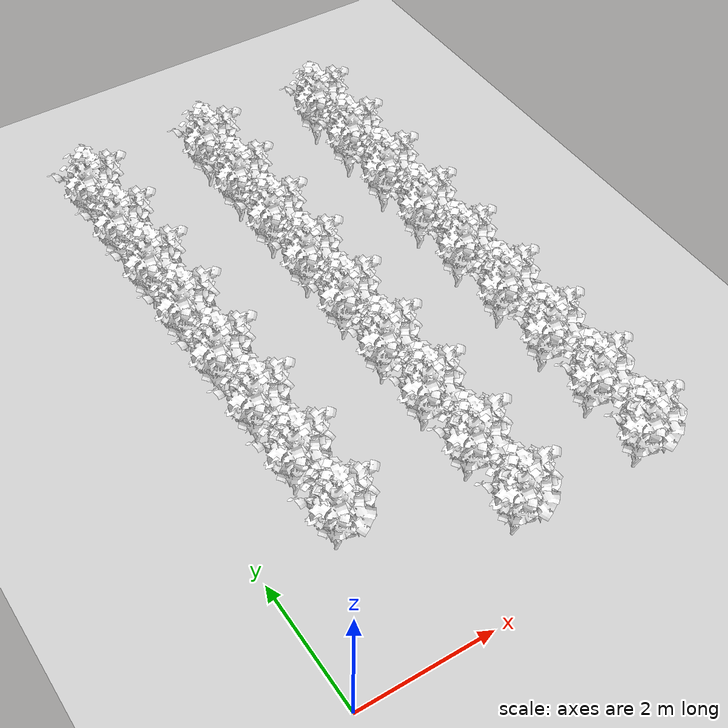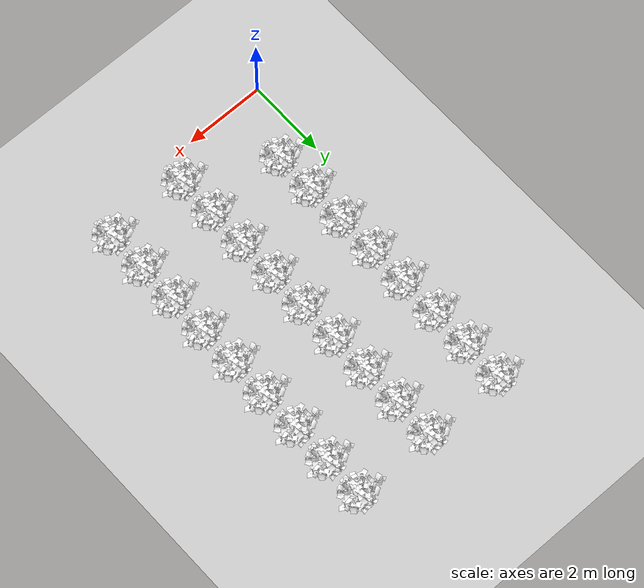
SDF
<sdf version="1.7">
 <world name="default">
  <include><uri>model://sun</uri></include>
  <model name="tree_43">
   <static>true</static>
   <link name="link">
    <visual name="trunk">
     <geometry><mesh><uri>model://meshes/Tree_1_Trunk.dae</uri></mesh></geometry>
     <material>
      <script>
       <uri>model://materials/scripts/</uri>
       <uri>model://materials/textures/</uri>
       <name>Vine/Bark</name>
      </script>
     </material>
    </visual>
    <visual name="leafa">
     <geometry><mesh><uri>model://meshes/Tree_1_Leaf_1.dae</uri></mesh></geometry>
     <material>
      <script>
       <uri>model://materials/scripts/</uri>
       <uri>model://materials/textures/</uri>
       <name>Vine/Leafa</name>
      </script>
     </material>
    </visual>
    <visual name="leafb">
     <geometry><mesh><uri>model://meshes/Tree_1_Leaf_2.dae</uri></mesh></geometry>
     <material>
      <script>
       <uri>model://materials/scripts/</uri>
       <uri>model://materials/textures/</uri>
       <name>Vine/Leafb</name>
      </script>
     </material>
    </visual>
    <visual name="leafc">
     <geometry><mesh><uri>model://meshes/Tree_1_Leaf_3.dae</uri></mesh></geometry>
     <material>
      <script>
       <uri>model://materials/scripts/</uri>
       <uri>model://materials/textures/</uri>
       <name>Vine/Leafc</name>
      </script>
     </material>
    </visual>
   </link>
   <pose>1 2 -0.3 0 0 0</pose>
  </model>
  <model name="tree_44">
   <static>true</static>
   <link name="link">
    <visual name="trunk">
     <geometry><mesh><uri>model://meshes/Tree_1_Trunk.dae</uri></mesh></geometry>
     <material>
      <script>
       <uri>model://materials/scripts/</uri>
       <uri>model://materials/textures/</uri>
       <name>Vine/Bark</name>
      </script>
     </material>
    </visual>
    <visual name="leafa">
     <geometry><mesh><uri>model://meshes/Tree_1_Leaf_1.dae</uri></mesh></geometry>
     <material>
      <script>
       <uri>model://materials/scripts/</uri>
       <uri>model://materials/textures/</uri>
       <name>Vine/Leafa</name>
      </script>
     </material>
    </visual>
    <visual name="leafb">
     <geometry><mesh><uri>model://meshes/Tree_1_Leaf_2.dae</uri></mesh></geometry>
     <material>
      <script>
       <uri>model://materials/scripts/</uri>
       <uri>model://materials/textures/</uri>
       <name>Vine/Leafb</name>
      </script>
     </material>
    </visual>
    <visual name="leafc">
     <geometry><mesh><uri>model://meshes/Tree_1_Leaf_3.dae</uri></mesh></geometry>
     <material>
      <script>
       <uri>model://materials/scripts/</uri>
       <uri>model://materials/textures/</uri>
       <name>Vine/Leafc</name>
      </script>
     </material>
    </visual>
   </link>
   <pose>1 3 -0.3 0 0 0</pose>
  </model>
  <model name="tree_45">
   <static>true</static>
   <link name="link">
    <visual name="trunk">
     <geometry><mesh><uri>model://meshes/Tree_1_Trunk.dae</uri></mesh></geometry>
     <material>
      <script>
       <uri>model://materials/scripts/</uri>
       <uri>model://materials/textures/</uri>
       <name>Vine/Bark</name>
      </script>
     </material>
    </visual>
    <visual name="leafa">
     <geometry><mesh><uri>model://meshes/Tree_1_Leaf_1.dae</uri></mesh></geometry>
     <material>
      <script>
       <uri>model://materials/scripts/</uri>
       <uri>model://materials/textures/</uri>
       <name>Vine/Leafa</name>
      </script>
     </material>
    </visual>
    <visual name="leafb">
     <geometry><mesh><uri>model://meshes/Tree_1_Leaf_2.dae</uri></mesh></geometry>
     <material>
      <script>
       <uri>model://materials/scripts/</uri>
       <uri>model://materials/textures/</uri>
       <name>Vine/Leafb</name>
      </script>
     </material>
    </visual>
    <visual name="leafc">
     <geometry><mesh><uri>model://meshes/Tree_1_Leaf_3.dae</uri></mesh></geometry>
     <material>
      <script>
       <uri>model://materials/scripts/</uri>
       <uri>model://materials/textures/</uri>
       <name>Vine/Leafc</name>
      </script>
     </material>
    </visual>
   </link>
   <pose>1 4 -0.3 0 0 0</pose>
  </model>
  <model name="tree_46">
   <static>true</static>
   <link name="link">
    <visual name="trunk">
     <geometry><mesh><uri>model://meshes/Tree_1_Trunk.dae</uri></mesh></geometry>
     <material>
      <script>
       <uri>model://materials/scripts/</uri>
       <uri>model://materials/textures/</uri>
       <name>Vine/Bark</name>
      </script>
     </material>
    </visual>
    <visual name="leafa">
     <geometry><mesh><uri>model://meshes/Tree_1_Leaf_1.dae</uri></mesh></geometry>
     <material>
      <script>
       <uri>model://materials/scripts/</uri>
       <uri>model://materials/textures/</uri>
       <name>Vine/Leafa</name>
      </script>
     </material>
    </visual>
    <visual name="leafb">
     <geometry><mesh><uri>model://meshes/Tree_1_Leaf_2.dae</uri></mesh></geometry>
     <material>
      <script>
       <uri>model://materials/scripts/</uri>
       <uri>model://materials/textures/</uri>
       <name>Vine/Leafb</name>
      </script>
     </material>
    </visual>
    <visual name="leafc">
     <geometry><mesh><uri>model://meshes/Tree_1_Leaf_3.dae</uri></mesh></geometry>
     <material>
      <script>
       <uri>model://materials/scripts/</uri>
       <uri>model://materials/textures/</uri>
       <name>Vine/Leafc</name>
      </script>
     </material>
    </visual>
   </link>
   <pose>1 5 -0.3 0 0 0</pose>
  </model>
  <model name="tree_47">
   <static>true</static>
   <link name="link">
    <visual name="trunk">
     <geometry><mesh><uri>model://meshes/Tree_1_Trunk.dae</uri></mesh></geometry>
     <material>
      <script>
       <uri>model://materials/scripts/</uri>
       <uri>model://materials/textures/</uri>
       <name>Vine/Bark</name>
      </script>
     </material>
    </visual>
    <visual name="leafa">
     <geometry><mesh><uri>model://meshes/Tree_1_Leaf_1.dae</uri></mesh></geometry>
     <material>
      <script>
       <uri>model://materials/scripts/</uri>
       <uri>model://materials/textures/</uri>
       <name>Vine/Leafa</name>
      </script>
     </material>
    </visual>
    <visual name="leafb">
     <geometry><mesh><uri>model://meshes/Tree_1_Leaf_2.dae</uri></mesh></geometry>
     <material>
      <script>
       <uri>model://materials/scripts/</uri>
       <uri>model://materials/textures/</uri>
       <name>Vine/Leafb</name>
      </script>
     </material>
    </visual>
    <visual name="leafc">
     <geometry><mesh><uri>model://meshes/Tree_1_Leaf_3.dae</uri></mesh></geometry>
     <material>
      <script>
       <uri>model://materials/scripts/</uri>
       <uri>model://materials/textures/</uri>
       <name>Vine/Leafc</name>
      </script>
     </material>
    </visual>
   </link>
   <pose>1 6 -0.3 0 0 0</pose>
  </model>
  <model name="tree_48">
   <static>true</static>
   <link name="link">
    <visual name="trunk">
     <geometry><mesh><uri>model://meshes/Tree_1_Trunk.dae</uri></mesh></geometry>
     <material>
      <script>
       <uri>model://materials/scripts/</uri>
       <uri>model://materials/textures/</uri>
       <name>Vine/Bark</name>
      </script>
     </material>
    </visual>
    <visual name="leafa">
     <geometry><mesh><uri>model://meshes/Tree_1_Leaf_1.dae</uri></mesh></geometry>
     <material>
      <script>
       <uri>model://materials/scripts/</uri>
       <uri>model://materials/textures/</uri>
       <name>Vine/Leafa</name>
      </script>
     </material>
    </visual>
    <visual name="leafb">
     <geometry><mesh><uri>model://meshes/Tree_1_Leaf_2.dae</uri></mesh></geometry>
     <material>
      <script>
       <uri>model://materials/scripts/</uri>
       <uri>model://materials/textures/</uri>
       <name>Vine/Leafb</name>
      </script>
     </material>
    </visual>
    <visual name="leafc">
     <geometry><mesh><uri>model://meshes/Tree_1_Leaf_3.dae</uri></mesh></geometry>
     <material>
      <script>
       <uri>model://materials/scripts/</uri>
       <uri>model://materials/textures/</uri>
       <name>Vine/Leafc</name>
      </script>
     </material>
    </visual>
   </link>
   <pose>1 7 -0.3 0 0 0</pose>
  </model>
  <model name="tree_49">
   <static>true</static>
   <link name="link">
    <visual name="trunk">
     <geometry><mesh><uri>model://meshes/Tree_1_Trunk.dae</uri></mesh></geometry>
     <material>
      <script>
       <uri>model://materials/scripts/</uri>
       <uri>model://materials/textures/</uri>
       <name>Vine/Bark</name>
      </script>
     </material>
    </visual>
    <visual name="leafa">
     <geometry><mesh><uri>model://meshes/Tree_1_Leaf_1.dae</uri></mesh></geometry>
     <material>
      <script>
       <uri>model://materials/scripts/</uri>
       <uri>model://materials/textures/</uri>
       <name>Vine/Leafa</name>
      </script>
     </material>
    </visual>
    <visual name="leafb">
     <geometry><mesh><uri>model://meshes/Tree_1_Leaf_2.dae</uri></mesh></geometry>
     <material>
      <script>
       <uri>model://materials/scripts/</uri>
       <uri>model://materials/textures/</uri>
       <name>Vine/Leafb</name>
      </script>
     </material>
    </visual>
    <visual name="leafc">
     <geometry><mesh><uri>model://meshes/Tree_1_Leaf_3.dae</uri></mesh></geometry>
     <material>
      <script>
       <uri>model://materials/scripts/</uri>
       <uri>model://materials/textures/</uri>
       <name>Vine/Leafc</name>
      </script>
     </material>
    </visual>
   </link>
   <pose>1 8 -0.3 0 0 0</pose>
  </model>
  <model name="tree_50">
   <static>true</static>
   <link name="link">
    <visual name="trunk">
     <geometry><mesh><uri>model://meshes/Tree_1_Trunk.dae</uri></mesh></geometry>
     <material>
      <script>
       <uri>model://materials/scripts/</uri>
       <uri>model://materials/textures/</uri>
       <name>Vine/Bark</name>
      </script>
     </material>
    </visual>
    <visual name="leafa">
     <geometry><mesh><uri>model://meshes/Tree_1_Leaf_1.dae</uri></mesh></geometry>
     <material>
      <script>
       <uri>model://materials/scripts/</uri>
       <uri>model://materials/textures/</uri>
       <name>Vine/Leafa</name>
      </script>
     </material>
    </visual>
    <visual name="leafb">
     <geometry><mesh><uri>model://meshes/Tree_1_Leaf_2.dae</uri></mesh></geometry>
     <material>
      <script>
       <uri>model://materials/scripts/</uri>
       <uri>model://materials/textures/</uri>
       <name>Vine/Leafb</name>
      </script>
     </material>
    </visual>
    <visual name="leafc">
     <geometry><mesh><uri>model://meshes/Tree_1_Leaf_3.dae</uri></mesh></geometry>
     <material>
      <script>
       <uri>model://materials/scripts/</uri>
       <uri>model://materials/textures/</uri>
       <name>Vine/Leafc</name>
      </script>
     </material>
    </visual>
   </link>
   <pose>1 9 -0.3 0 0 0</pose>
  </model>
  <model name="tree_55">
   <static>true</static>
   <link name="link">
    <visual name="trunk">
     <geometry><mesh><uri>model://meshes/Tree_1_Trunk.dae</uri></mesh></geometry>
     <material>
      <script>
       <uri>model://materials/scripts/</uri>
       <uri>model://materials/textures/</uri>
       <name>Vine/Bark</name>
      </script>
     </material>
    </visual>
    <visual name="leafa">
     <geometry><mesh><uri>model://meshes/Tree_1_Leaf_1.dae</uri></mesh></geometry>
     <material>
      <script>
       <uri>model://materials/scripts/</uri>
       <uri>model://materials/textures/</uri>
       <name>Vine/Leafa</name>
      </script>
     </material>
    </visual>
    <visual name="leafb">
     <geometry><mesh><uri>model://meshes/Tree_1_Leaf_2.dae</uri></mesh></geometry>
     <material>
      <script>
       <uri>model://materials/scripts/</uri>
       <uri>model://materials/textures/</uri>
       <name>Vine/Leafb</name>
      </script>
     </material>
    </visual>
    <visual name="leafc">
     <geometry><mesh><uri>model://meshes/Tree_1_Leaf_3.dae</uri></mesh></geometry>
     <material>
      <script>
       <uri>model://materials/scripts/</uri>
       <uri>model://materials/textures/</uri>
       <name>Vine/Leafc</name>
      </script>
     </material>
    </visual>
   </link>
   <pose>3 1 -0.3 0 0 0</pose>
  </model>
  <model name="tree_56">
   <static>true</static>
   <link name="link">
    <visual name="trunk">
     <geometry><mesh><uri>model://meshes/Tree_1_Trunk.dae</uri></mesh></geometry>
     <material>
      <script>
       <uri>model://materials/scripts/</uri>
       <uri>model://materials/textures/</uri>
       <name>Vine/Bark</name>
      </script>
     </material>
    </visual>
    <visual name="leafa">
     <geometry><mesh><uri>model://meshes/Tree_1_Leaf_1.dae</uri></mesh></geometry>
     <material>
      <script>
       <uri>model://materials/scripts/</uri>
       <uri>model://materials/textures/</uri>
       <name>Vine/Leafa</name>
      </script>
     </material>
    </visual>
    <visual name="leafb">
     <geometry><mesh><uri>model://meshes/Tree_1_Leaf_2.dae</uri></mesh></geometry>
     <material>
      <script>
       <uri>model://materials/scripts/</uri>
       <uri>model://materials/textures/</uri>
       <name>Vine/Leafb</name>
      </script>
     </material>
    </visual>
    <visual name="leafc">
     <geometry><mesh><uri>model://meshes/Tree_1_Leaf_3.dae</uri></mesh></geometry>
     <material>
      <script>
       <uri>model://materials/scripts/</uri>
       <uri>model://materials/textures/</uri>
       <name>Vine/Leafc</name>
      </script>
     </material>
    </visual>
   </link>
   <pose>3 2 -0.3 0 0 0</pose>
  </model>
  <model name="tree_57">
   <static>true</static>
   <link name="link">
    <visual name="trunk">
     <geometry><mesh><uri>model://meshes/Tree_1_Trunk.dae</uri></mesh></geometry>
     <material>
      <script>
       <uri>model://materials/scripts/</uri>
       <uri>model://materials/textures/</uri>
       <name>Vine/Bark</name>
      </script>
     </material>
    </visual>
    <visual name="leafa">
     <geometry><mesh><uri>model://meshes/Tree_1_Leaf_1.dae</uri></mesh></geometry>
     <material>
      <script>
       <uri>model://materials/scripts/</uri>
       <uri>model://materials/textures/</uri>
       <name>Vine/Leafa</name>
      </script>
     </material>
    </visual>
    <visual name="leafb">
     <geometry><mesh><uri>model://meshes/Tree_1_Leaf_2.dae</uri></mesh></geometry>
     <material>
      <script>
       <uri>model://materials/scripts/</uri>
       <uri>model://materials/textures/</uri>
       <name>Vine/Leafb</name>
      </script>
     </material>
    </visual>
    <visual name="leafc">
     <geometry><mesh><uri>model://meshes/Tree_1_Leaf_3.dae</uri></mesh></geometry>
     <material>
      <script>
       <uri>model://materials/scripts/</uri>
       <uri>model://materials/textures/</uri>
       <name>Vine/Leafc</name>
      </script>
     </material>
    </visual>
   </link>
   <pose>3 3 -0.3 0 0 0</pose>
  </model>
  <model name="tree_58">
   <static>true</static>
   <link name="link">
    <visual name="trunk">
     <geometry><mesh><uri>model://meshes/Tree_1_Trunk.dae</uri></mesh></geometry>
     <material>
      <script>
       <uri>model://materials/scripts/</uri>
       <uri>model://materials/textures/</uri>
       <name>Vine/Bark</name>
      </script>
     </material>
    </visual>
    <visual name="leafa">
     <geometry><mesh><uri>model://meshes/Tree_1_Leaf_1.dae</uri></mesh></geometry>
     <material>
      <script>
       <uri>model://materials/scripts/</uri>
       <uri>model://materials/textures/</uri>
       <name>Vine/Leafa</name>
      </script>
     </material>
    </visual>
    <visual name="leafb">
     <geometry><mesh><uri>model://meshes/Tree_1_Leaf_2.dae</uri></mesh></geometry>
     <material>
      <script>
       <uri>model://materials/scripts/</uri>
       <uri>model://materials/textures/</uri>
       <name>Vine/Leafb</name>
      </script>
     </material>
    </visual>
    <visual name="leafc">
     <geometry><mesh><uri>model://meshes/Tree_1_Leaf_3.dae</uri></mesh></geometry>
     <material>
      <script>
       <uri>model://materials/scripts/</uri>
       <uri>model://materials/textures/</uri>
       <name>Vine/Leafc</name>
      </script>
     </material>
    </visual>
   </link>
   <pose>3 4 -0.3 0 0 0</pose>
  </model>
  <model name="tree_59">
   <static>true</static>
   <link name="link">
    <visual name="trunk">
     <geometry><mesh><uri>model://meshes/Tree_1_Trunk.dae</uri></mesh></geometry>
     <material>
      <script>
       <uri>model://materials/scripts/</uri>
       <uri>model://materials/textures/</uri>
       <name>Vine/Bark</name>
      </script>
     </material>
    </visual>
    <visual name="leafa">
     <geometry><mesh><uri>model://meshes/Tree_1_Leaf_1.dae</uri></mesh></geometry>
     <material>
      <script>
       <uri>model://materials/scripts/</uri>
       <uri>model://materials/textures/</uri>
       <name>Vine/Leafa</name>
      </script>
     </material>
    </visual>
    <visual name="leafb">
     <geometry><mesh><uri>model://meshes/Tree_1_Leaf_2.dae</uri></mesh></geometry>
     <material>
      <script>
       <uri>model://materials/scripts/</uri>
       <uri>model://materials/textures/</uri>
       <name>Vine/Leafb</name>
      </script>
     </material>
    </visual>
    <visual name="leafc">
     <geometry><mesh><uri>model://meshes/Tree_1_Leaf_3.dae</uri></mesh></geometry>
     <material>
      <script>
       <uri>model://materials/scripts/</uri>
       <uri>model://materials/textures/</uri>
       <name>Vine/Leafc</name>
      </script>
     </material>
    </visual>
   </link>
   <pose>3 5 -0.3 0 0 0</pose>
  </model>
  <model name="tree_60">
   <static>true</static>
   <link name="link">
    <visual name="trunk">
     <geometry><mesh><uri>model://meshes/Tree_1_Trunk.dae</uri></mesh></geometry>
     <material>
      <script>
       <uri>model://materials/scripts/</uri>
       <uri>model://materials/textures/</uri>
       <name>Vine/Bark</name>
      </script>
     </material>
    </visual>
    <visual name="leafa">
     <geometry><mesh><uri>model://meshes/Tree_1_Leaf_1.dae</uri></mesh></geometry>
     <material>
      <script>
       <uri>model://materials/scripts/</uri>
       <uri>model://materials/textures/</uri>
       <name>Vine/Leafa</name>
      </script>
     </material>
    </visual>
    <visual name="leafb">
     <geometry><mesh><uri>model://meshes/Tree_1_Leaf_2.dae</uri></mesh></geometry>
     <material>
      <script>
       <uri>model://materials/scripts/</uri>
       <uri>model://materials/textures/</uri>
       <name>Vine/Leafb</name>
      </script>
     </material>
    </visual>
    <visual name="leafc">
     <geometry><mesh><uri>model://meshes/Tree_1_Leaf_3.dae</uri></mesh></geometry>
     <material>
      <script>
       <uri>model://materials/scripts/</uri>
       <uri>model://materials/textures/</uri>
       <name>Vine/Leafc</name>
      </script>
     </material>
    </visual>
   </link>
   <pose>3 6 -0.3 0 0 0</pose>
  </model>
  <model name="tree_61">
   <static>true</static>
   <link name="link">
    <visual name="trunk">
     <geometry><mesh><uri>model://meshes/Tree_1_Trunk.dae</uri></mesh></geometry>
     <material>
      <script>
       <uri>model://materials/scripts/</uri>
       <uri>model://materials/textures/</uri>
       <name>Vine/Bark</name>
      </script>
     </material>
    </visual>
    <visual name="leafa">
     <geometry><mesh><uri>model://meshes/Tree_1_Leaf_1.dae</uri></mesh></geometry>
     <material>
      <script>
       <uri>model://materials/scripts/</uri>
       <uri>model://materials/textures/</uri>
       <name>Vine/Leafa</name>
      </script>
     </material>
    </visual>
    <visual name="leafb">
     <geometry><mesh><uri>model://meshes/Tree_1_Leaf_2.dae</uri></mesh></geometry>
     <material>
      <script>
       <uri>model://materials/scripts/</uri>
       <uri>model://materials/textures/</uri>
       <name>Vine/Leafb</name>
      </script>
     </material>
    </visual>
    <visual name="leafc">
     <geometry><mesh><uri>model://meshes/Tree_1_Leaf_3.dae</uri></mesh></geometry>
     <material>
      <script>
       <uri>model://materials/scripts/</uri>
       <uri>model://materials/textures/</uri>
       <name>Vine/Leafc</name>
      </script>
     </material>
    </visual>
   </link>
   <pose>3 7 -0.3 0 0 0</pose>
  </model>
  <model name="tree_62">
   <static>true</static>
   <link name="link">
    <visual name="trunk">
     <geometry><mesh><uri>model://meshes/Tree_1_Trunk.dae</uri></mesh></geometry>
     <material>
      <script>
       <uri>model://materials/scripts/</uri>
       <uri>model://materials/textures/</uri>
       <name>Vine/Bark</name>
      </script>
     </material>
    </visual>
    <visual name="leafa">
     <geometry><mesh><uri>model://meshes/Tree_1_Leaf_1.dae</uri></mesh></geometry>
     <material>
      <script>
       <uri>model://materials/scripts/</uri>
       <uri>model://materials/textures/</uri>
       <name>Vine/Leafa</name>
      </script>
     </material>
    </visual>
    <visual name="leafb">
     <geometry><mesh><uri>model://meshes/Tree_1_Leaf_2.dae</uri></mesh></geometry>
     <material>
      <script>
       <uri>model://materials/scripts/</uri>
       <uri>model://materials/textures/</uri>
       <name>Vine/Leafb</name>
      </script>
     </material>
    </visual>
    <visual name="leafc">
     <geometry><mesh><uri>model://meshes/Tree_1_Leaf_3.dae</uri></mesh></geometry>
     <material>
      <script>
       <uri>model://materials/scripts/</uri>
       <uri>model://materials/textures/</uri>
       <name>Vine/Leafc</name>
      </script>
     </material>
    </visual>
   </link>
   <pose>3 8 -0.3 0 0 0</pose>
  </model>
  <model name="tree_63">
   <static>true</static>
   <link name="link">
    <visual name="trunk">
     <geometry><mesh><uri>model://meshes/Tree_1_Trunk.dae</uri></mesh></geometry>
     <material>
      <script>
       <uri>model://materials/scripts/</uri>
       <uri>model://materials/textures/</uri>
       <name>Vine/Bark</name>
      </script>
     </material>
    </visual>
    <visual name="leafa">
     <geometry><mesh><uri>model://meshes/Tree_1_Leaf_1.dae</uri></mesh></geometry>
     <material>
      <script>
       <uri>model://materials/scripts/</uri>
       <uri>model://materials/textures/</uri>
       <name>Vine/Leafa</name>
      </script>
     </material>
    </visual>
    <visual name="leafb">
     <geometry><mesh><uri>model://meshes/Tree_1_Leaf_2.dae</uri></mesh></geometry>
     <material>
      <script>
       <uri>model://materials/scripts/</uri>
       <uri>model://materials/textures/</uri>
       <name>Vine/Leafb</name>
      </script>
     </material>
    </visual>
    <visual name="leafc">
     <geometry><mesh><uri>model://meshes/Tree_1_Leaf_3.dae</uri></mesh></geometry>
     <material>
      <script>
       <uri>model://materials/scripts/</uri>
       <uri>model://materials/textures/</uri>
       <name>Vine/Leafc</name>
      </script>
     </material>
    </visual>
   </link>
   <pose>3 9 -0.3 0 0 0</pose>
  </model>
  <model name="tree_68">
   <static>true</static>
   <link name="link">
    <visual name="trunk">
     <geometry><mesh><uri>model://meshes/Tree_1_Trunk.dae</uri></mesh></geometry>
     <material>
      <script>
       <uri>model://materials/scripts/</uri>
       <uri>model://materials/textures/</uri>
       <name>Vine/Bark</name>
      </script>
     </material>
    </visual>
    <visual name="leafa">
     <geometry><mesh><uri>model://meshes/Tree_1_Leaf_1.dae</uri></mesh></geometry>
     <material>
      <script>
       <uri>model://materials/scripts/</uri>
       <uri>model://materials/textures/</uri>
       <name>Vine/Leafa</name>
      </script>
     </material>
    </visual>
    <visual name="leafb">
     <geometry><mesh><uri>model://meshes/Tree_1_Leaf_2.dae</uri></mesh></geometry>
     <material>
      <script>
       <uri>model://materials/scripts/</uri>
       <uri>model://materials/textures/</uri>
       <name>Vine/Leafb</name>
      </script>
     </material>
    </visual>
    <visual name="leafc">
     <geometry><mesh><uri>model://meshes/Tree_1_Leaf_3.dae</uri></mesh></geometry>
     <material>
      <script>
       <uri>model://materials/scripts/</uri>
       <uri>model://materials/textures/</uri>
       <name>Vine/Leafc</name>
      </script>
     </material>
    </visual>
   </link>
   <pose>5 1 -0.3 0 0 0</pose>
  </model>
  <model name="tree_69">
   <static>true</static>
   <link name="link">
    <visual name="trunk">
     <geometry><mesh><uri>model://meshes/Tree_1_Trunk.dae</uri></mesh></geometry>
     <material>
      <script>
       <uri>model://materials/scripts/</uri>
       <uri>model://materials/textures/</uri>
       <name>Vine/Bark</name>
      </script>
     </material>
    </visual>
    <visual name="leafa">
     <geometry><mesh><uri>model://meshes/Tree_1_Leaf_1.dae</uri></mesh></geometry>
     <material>
      <script>
       <uri>model://materials/scripts/</uri>
       <uri>model://materials/textures/</uri>
       <name>Vine/Leafa</name>
      </script>
     </material>
    </visual>
    <visual name="leafb">
     <geometry><mesh><uri>model://meshes/Tree_1_Leaf_2.dae</uri></mesh></geometry>
     <material>
      <script>
       <uri>model://materials/scripts/</uri>
       <uri>model://materials/textures/</uri>
       <name>Vine/Leafb</name>
      </script>
     </material>
    </visual>
    <visual name="leafc">
     <geometry><mesh><uri>model://meshes/Tree_1_Leaf_3.dae</uri></mesh></geometry>
     <material>
      <script>
       <uri>model://materials/scripts/</uri>
       <uri>model://materials/textures/</uri>
       <name>Vine/Leafc</name>
      </script>
     </material>
    </visual>
   </link>
   <pose>5 2 -0.3 0 0 0</pose>
  </model>
  <model name="tree_70">
   <static>true</static>
   <link name="link">
    <visual name="trunk">
     <geometry><mesh><uri>model://meshes/Tree_1_Trunk.dae</uri></mesh></geometry>
     <material>
      <script>
       <uri>model://materials/scripts/</uri>
       <uri>model://materials/textures/</uri>
       <name>Vine/Bark</name>
      </script>
     </material>
    </visual>
    <visual name="leafa">
     <geometry><mesh><uri>model://meshes/Tree_1_Leaf_1.dae</uri></mesh></geometry>
     <material>
      <script>
       <uri>model://materials/scripts/</uri>
       <uri>model://materials/textures/</uri>
       <name>Vine/Leafa</name>
      </script>
     </material>
    </visual>
    <visual name="leafb">
     <geometry><mesh><uri>model://meshes/Tree_1_Leaf_2.dae</uri></mesh></geometry>
     <material>
      <script>
       <uri>model://materials/scripts/</uri>
       <uri>model://materials/textures/</uri>
       <name>Vine/Leafb</name>
      </script>
     </material>
    </visual>
    <visual name="leafc">
     <geometry><mesh><uri>model://meshes/Tree_1_Leaf_3.dae</uri></mesh></geometry>
     <material>
      <script>
       <uri>model://materials/scripts/</uri>
       <uri>model://materials/textures/</uri>
       <name>Vine/Leafc</name>
      </script>
     </material>
    </visual>
   </link>
   <pose>5 3 -0.3 0 0 0</pose>
  </model>
  <model name="tree_71">
   <static>true</static>
   <link name="link">
    <visual name="trunk">
     <geometry><mesh><uri>model://meshes/Tree_1_Trunk.dae</uri></mesh></geometry>
     <material>
      <script>
       <uri>model://materials/scripts/</uri>
       <uri>model://materials/textures/</uri>
       <name>Vine/Bark</name>
      </script>
     </material>
    </visual>
    <visual name="leafa">
     <geometry><mesh><uri>model://meshes/Tree_1_Leaf_1.dae</uri></mesh></geometry>
     <material>
      <script>
       <uri>model://materials/scripts/</uri>
       <uri>model://materials/textures/</uri>
       <name>Vine/Leafa</name>
      </script>
     </material>
    </visual>
    <visual name="leafb">
     <geometry><mesh><uri>model://meshes/Tree_1_Leaf_2.dae</uri></mesh></geometry>
     <material>
      <script>
       <uri>model://materials/scripts/</uri>
       <uri>model://materials/textures/</uri>
       <name>Vine/Leafb</name>
      </script>
     </material>
    </visual>
    <visual name="leafc">
     <geometry><mesh><uri>model://meshes/Tree_1_Leaf_3.dae</uri></mesh></geometry>
     <material>
      <script>
       <uri>model://materials/scripts/</uri>
       <uri>model://materials/textures/</uri>
       <name>Vine/Leafc</name>
      </script>
     </material>
    </visual>
   </link>
   <pose>5 4 -0.3 0 0 0</pose>
  </model>
  <model name="tree_72">
   <static>true</static>
   <link name="link">
    <visual name="trunk">
     <geometry><mesh><uri>model://meshes/Tree_1_Trunk.dae</uri></mesh></geometry>
     <material>
      <script>
       <uri>model://materials/scripts/</uri>
       <uri>model://materials/textures/</uri>
       <name>Vine/Bark</name>
      </script>
     </material>
    </visual>
    <visual name="leafa">
     <geometry><mesh><uri>model://meshes/Tree_1_Leaf_1.dae</uri></mesh></geometry>
     <material>
      <script>
       <uri>model://materials/scripts/</uri>
       <uri>model://materials/textures/</uri>
       <name>Vine/Leafa</name>
      </script>
     </material>
    </visual>
    <visual name="leafb">
     <geometry><mesh><uri>model://meshes/Tree_1_Leaf_2.dae</uri></mesh></geometry>
     <material>
      <script>
       <uri>model://materials/scripts/</uri>
       <uri>model://materials/textures/</uri>
       <name>Vine/Leafb</name>
      </script>
     </material>
    </visual>
    <visual name="leafc">
     <geometry><mesh><uri>model://meshes/Tree_1_Leaf_3.dae</uri></mesh></geometry>
     <material>
      <script>
       <uri>model://materials/scripts/</uri>
       <uri>model://materials/textures/</uri>
       <name>Vine/Leafc</name>
      </script>
     </material>
    </visual>
   </link>
   <pose>5 5 -0.3 0 0 0</pose>
  </model>
  <model name="tree_73">
   <static>true</static>
   <link name="link">
    <visual name="trunk">
     <geometry><mesh><uri>model://meshes/Tree_1_Trunk.dae</uri></mesh></geometry>
     <material>
      <script>
       <uri>model://materials/scripts/</uri>
       <uri>model://materials/textures/</uri>
       <name>Vine/Bark</name>
      </script>
     </material>
    </visual>
    <visual name="leafa">
     <geometry><mesh><uri>model://meshes/Tree_1_Leaf_1.dae</uri></mesh></geometry>
     <material>
      <script>
       <uri>model://materials/scripts/</uri>
       <uri>model://materials/textures/</uri>
       <name>Vine/Leafa</name>
      </script>
     </material>
    </visual>
    <visual name="leafb">
     <geometry><mesh><uri>model://meshes/Tree_1_Leaf_2.dae</uri></mesh></geometry>
     <material>
      <script>
       <uri>model://materials/scripts/</uri>
       <uri>model://materials/textures/</uri>
       <name>Vine/Leafb</name>
      </script>
     </material>
    </visual>
    <visual name="leafc">
     <geometry><mesh><uri>model://meshes/Tree_1_Leaf_3.dae</uri></mesh></geometry>
     <material>
      <script>
       <uri>model://materials/scripts/</uri>
       <uri>model://materials/textures/</uri>
       <name>Vine/Leafc</name>
      </script>
     </material>
    </visual>
   </link>
   <pose>5 6 -0.3 0 0 0</pose>
  </model>
  <model name="tree_74">
   <static>true</static>
   <link name="link">
    <visual name="trunk">
     <geometry><mesh><uri>model://meshes/Tree_1_Trunk.dae</uri></mesh></geometry>
     <material>
      <script>
       <uri>model://materials/scripts/</uri>
       <uri>model://materials/textures/</uri>
       <name>Vine/Bark</name>
      </script>
     </material>
    </visual>
    <visual name="leafa">
     <geometry><mesh><uri>model://meshes/Tree_1_Leaf_1.dae</uri></mesh></geometry>
     <material>
      <script>
       <uri>model://materials/scripts/</uri>
       <uri>model://materials/textures/</uri>
       <name>Vine/Leafa</name>
      </script>
     </material>
    </visual>
    <visual name="leafb">
     <geometry><mesh><uri>model://meshes/Tree_1_Leaf_2.dae</uri></mesh></geometry>
     <material>
      <script>
       <uri>model://materials/scripts/</uri>
       <uri>model://materials/textures/</uri>
       <name>Vine/Leafb</name>
      </script>
     </material>
    </visual>
    <visual name="leafc">
     <geometry><mesh><uri>model://meshes/Tree_1_Leaf_3.dae</uri></mesh></geometry>
     <material>
      <script>
       <uri>model://materials/scripts/</uri>
       <uri>model://materials/textures/</uri>
       <name>Vine/Leafc</name>
      </script>
     </material>
    </visual>
   </link>
   <pose>5 7 -0.3 0 0 0</pose>
  </model>
  <model name="tree_75">
   <static>true</static>
   <link name="link">
    <visual name="trunk">
     <geometry><mesh><uri>model://meshes/Tree_1_Trunk.dae</uri></mesh></geometry>
     <material>
      <script>
       <uri>model://materials/scripts/</uri>
       <uri>model://materials/textures/</uri>
       <name>Vine/Bark</name>
      </script>
     </material>
    </visual>
    <visual name="leafa">
     <geometry><mesh><uri>model://meshes/Tree_1_Leaf_1.dae</uri></mesh></geometry>
     <material>
      <script>
       <uri>model://materials/scripts/</uri>
       <uri>model://materials/textures/</uri>
       <name>Vine/Leafa</name>
      </script>
     </material>
    </visual>
    <visual name="leafb">
     <geometry><mesh><uri>model://meshes/Tree_1_Leaf_2.dae</uri></mesh></geometry>
     <material>
      <script>
       <uri>model://materials/scripts/</uri>
       <uri>model://materials/textures/</uri>
       <name>Vine/Leafb</name>
      </script>
     </material>
    </visual>
    <visual name="leafc">
     <geometry><mesh><uri>model://meshes/Tree_1_Leaf_3.dae</uri></mesh></geometry>
     <material>
      <script>
       <uri>model://materials/scripts/</uri>
       <uri>model://materials/textures/</uri>
       <name>Vine/Leafc</name>
      </script>
     </material>
    </visual>
   </link>
   <pose>5 8 -0.3 0 0 0</pose>
  </model>
  <model name="tree_76">
   <static>true</static>
   <link name="link">
    <visual name="trunk">
     <geometry><mesh><uri>model://meshes/Tree_1_Trunk.dae</uri></mesh></geometry>
     <material>
      <script>
       <uri>model://materials/scripts/</uri>
       <uri>model://materials/textures/</uri>
       <name>Vine/Bark</name>
      </script>
     </material>
    </visual>
    <visual name="leafa">
     <geometry><mesh><uri>model://meshes/Tree_1_Leaf_1.dae</uri></mesh></geometry>
     <material>
      <script>
       <uri>model://materials/scripts/</uri>
       <uri>model://materials/textures/</uri>
       <name>Vine/Leafa</name>
      </script>
     </material>
    </visual>
    <visual name="leafb">
     <geometry><mesh><uri>model://meshes/Tree_1_Leaf_2.dae</uri></mesh></geometry>
     <material>
      <script>
       <uri>model://materials/scripts/</uri>
       <uri>model://materials/textures/</uri>
       <name>Vine/Leafb</name>
      </script>
     </material>
    </visual>
    <visual name="leafc">
     <geometry><mesh><uri>model://meshes/Tree_1_Leaf_3.dae</uri></mesh></geometry>
     <material>
      <script>
       <uri>model://materials/scripts/</uri>
       <uri>model://materials/textures/</uri>
       <name>Vine/Leafc</name>
      </script>
     </material>
    </visual>
   </link>
   <pose>5 9 -0.3 0 0 0</pose>
  </model>
  <model name="ground_plane">
   <static>true</static>
   <link name="link">
    <collision name="collision">
     <geometry><plane><normal>0 0 1</normal><size>30 30</size></plane></geometry>
    </collision>
    <visual name="visual">
     <geometry><plane><normal>0 0 1</normal><size>30 30</size></plane></geometry>
     <material>
      <script><uri>model://materials/scripts/</uri><uri>model://materials/textures/</uri><name>Plane</name></script>
     </material>
    </visual>
   </link>
  </model>
 </world>
</sdf>
